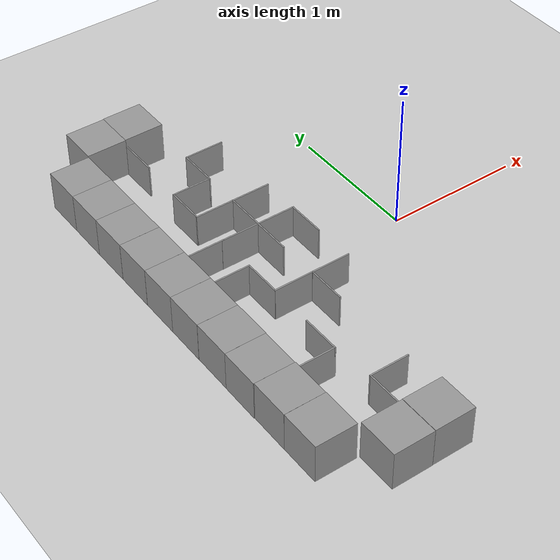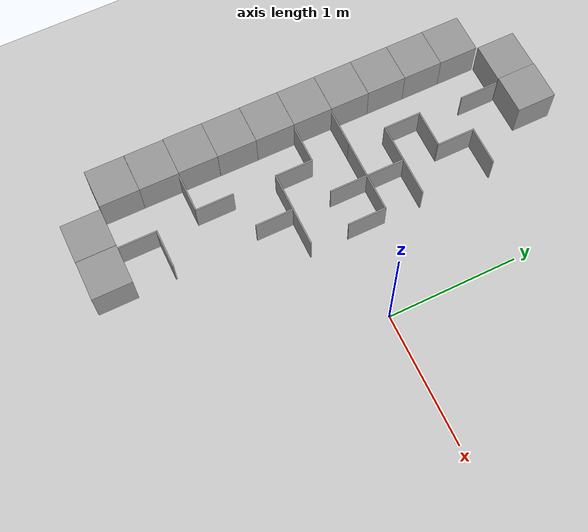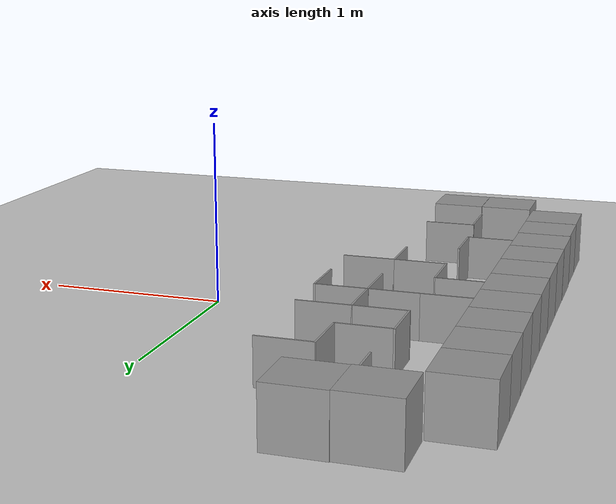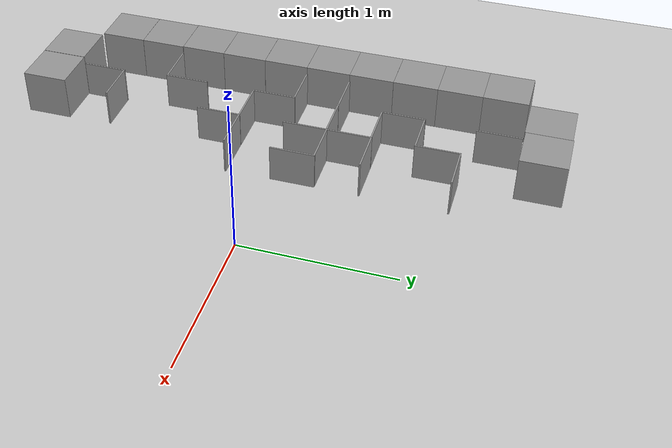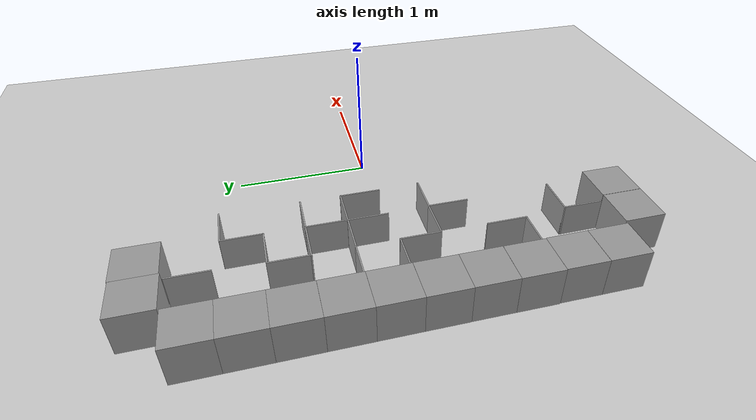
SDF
<sdf version="1.6">
 <world name="default">
  <model name="ground_plane">
   <static>1</static>
   <link name="link">
    <collision name="collision">
     <geometry><plane><normal>0 0 1</normal><size>100 100</size></plane></geometry>
     <surface><friction><ode><mu>100</mu><mu2>50</mu2></ode></friction></surface>
    </collision>
    <visual name="visual">
     <cast_shadows>0</cast_shadows>
     <geometry><plane><normal>0 0 1</normal><size>100 100</size></plane></geometry>
     <material>
      <script><uri>file://media/materials/scripts/gazebo.material</uri><name>Gazebo/Grey</name></script>
     </material>
    </visual>
   </link>
  </model>
  <model name="Box_Yellow">
   <link name="link_0">
    <inertial>
     <mass>1</mass>
     <inertia>
      <ixx>0.166667</ixx>
      <ixy>0</ixy>
      <ixz>0</ixz>
      <iyy>0.166667</iyy>
      <iyz>0</iyz>
      <izz>0.166667</izz>
     </inertia>
    </inertial>
    <visual name="visual">
     <geometry><box><size>0.3 0.3 0.3</size></box></geometry>
     <material>
      <lighting>1</lighting>
      <script><uri>file://media/materials/scripts/gazebo.material</uri><name>Gazebo/Grey</name></script>
      <ambient>1 1 1 1</ambient>
      <diffuse>0.7 0.7 0.7 1</diffuse>
      <specular>0.01 0.01 0.01 1</specular>
      <emissive>0 0 0 1</emissive>
      <shader type="vertex"><normal_map>__default__</normal_map></shader>
     </material>
    </visual>
    <collision name="collision">
     <geometry><box><size>0.3 0.3 0.3</size></box></geometry>
     <surface>
      <friction>
       <ode><mu>1</mu><mu2>1</mu2><fdir1>0 0 0</fdir1><slip1>0</slip1><slip2>0</slip2></ode>
       <torsional>
        <coefficient>1</coefficient>
        <patch_radius>0</patch_radius>
        <surface_radius>0</surface_radius>
        <use_patch_radius>1</use_patch_radius>
        <ode><slip>0</slip></ode>
       </torsional>
      </friction>
      <bounce><restitution_coefficient>0</restitution_coefficient><threshold>1e+06</threshold></bounce>
      <contact>
       <collide_without_contact>0</collide_without_contact>
       <collide_without_contact_bitmask>1</collide_without_contact_bitmask>
       <collide_bitmask>1</collide_bitmask>
       <ode>
        <soft_cfm>0</soft_cfm>
        <soft_erp>0.2</soft_erp>
        <kp>1e+13</kp>
        <kd>1</kd>
        <max_vel>0.01</max_vel>
        <min_depth>0</min_depth>
       </ode>
       <bullet>
        <split_impulse>1</split_impulse>
        <split_impulse_penetration_threshold>-0.01</split_impulse_penetration_threshold>
        <soft_cfm>0</soft_cfm>
        <soft_erp>0.2</soft_erp>
        <kp>1e+13</kp>
        <kd>1</kd>
       </bullet>
      </contact>
     </surface>
    </collision>
   </link>
   <static>0</static>
   <pose>-1.66342 -1.35735 0.15 0 -0 -0.001735</pose>
  </model>
  <model name="Box_Green_clone_6">
   <link name="link_0">
    <inertial>
     <mass>1</mass>
     <inertia>
      <ixx>0.166667</ixx>
      <ixy>0</ixy>
      <ixz>0</ixz>
      <iyy>0.166667</iyy>
      <iyz>0</iyz>
      <izz>0.166667</izz>
     </inertia>
    </inertial>
    <visual name="visual">
     <geometry><box><size>0.3 0.3 0.3</size></box></geometry>
     <material>
      <lighting>1</lighting>
      <script><uri>file://media/materials/scripts/gazebo.material</uri><name>Gazebo/Grey</name></script>
      <ambient>1 1 1 1</ambient>
      <diffuse>0.7 0.7 0.7 1</diffuse>
      <specular>0.01 0.01 0.01 1</specular>
      <emissive>0 0 0 1</emissive>
      <shader type="vertex"><normal_map>__default__</normal_map></shader>
     </material>
    </visual>
    <collision name="collision">
     <geometry><box><size>0.3 0.3 0.3</size></box></geometry>
     <surface>
      <friction>
       <ode><mu>1</mu><mu2>1</mu2><fdir1>0 0 0</fdir1><slip1>0</slip1><slip2>0</slip2></ode>
       <torsional>
        <coefficient>1</coefficient>
        <patch_radius>0</patch_radius>
        <surface_radius>0</surface_radius>
        <use_patch_radius>1</use_patch_radius>
        <ode><slip>0</slip></ode>
       </torsional>
      </friction>
      <bounce><restitution_coefficient>0</restitution_coefficient><threshold>1e+06</threshold></bounce>
      <contact>
       <collide_without_contact>0</collide_without_contact>
       <collide_without_contact_bitmask>1</collide_without_contact_bitmask>
       <collide_bitmask>1</collide_bitmask>
       <ode>
        <soft_cfm>0</soft_cfm>
        <soft_erp>0.2</soft_erp>
        <kp>1e+13</kp>
        <kd>1</kd>
        <max_vel>0.01</max_vel>
        <min_depth>0</min_depth>
       </ode>
       <bullet>
        <split_impulse>1</split_impulse>
        <split_impulse_penetration_threshold>-0.01</split_impulse_penetration_threshold>
        <soft_cfm>0</soft_cfm>
        <soft_erp>0.2</soft_erp>
        <kp>1e+13</kp>
        <kd>1</kd>
       </bullet>
      </contact>
     </surface>
    </collision>
   </link>
   <static>0</static>
   <pose>-1.04062 -1.65808 0.15 0 -0 0.000344</pose>
  </model>
  <model name="Box_Yellow_clone">
   <link name="link_0">
    <inertial>
     <mass>1</mass>
     <inertia>
      <ixx>0.166667</ixx>
      <ixy>0</ixy>
      <ixz>0</ixz>
      <iyy>0.166667</iyy>
      <iyz>0</iyz>
      <izz>0.166667</izz>
     </inertia>
    </inertial>
    <visual name="visual">
     <geometry><box><size>0.3 0.3 0.3</size></box></geometry>
     <material>
      <lighting>1</lighting>
      <script><uri>file://media/materials/scripts/gazebo.material</uri><name>Gazebo/Grey</name></script>
      <ambient>1 1 1 1</ambient>
      <diffuse>0.7 0.7 0.7 1</diffuse>
      <specular>0.01 0.01 0.01 1</specular>
      <emissive>0 0 0 1</emissive>
      <shader type="vertex"><normal_map>__default__</normal_map></shader>
     </material>
    </visual>
    <collision name="collision">
     <geometry><box><size>0.3 0.3 0.3</size></box></geometry>
     <surface>
      <friction>
       <ode><mu>1</mu><mu2>1</mu2><fdir1>0 0 0</fdir1><slip1>0</slip1><slip2>0</slip2></ode>
       <torsional>
        <coefficient>1</coefficient>
        <patch_radius>0</patch_radius>
        <surface_radius>0</surface_radius>
        <use_patch_radius>1</use_patch_radius>
        <ode><slip>0</slip></ode>
       </torsional>
      </friction>
      <bounce><restitution_coefficient>0</restitution_coefficient><threshold>1e+06</threshold></bounce>
      <contact>
       <collide_without_contact>0</collide_without_contact>
       <collide_without_contact_bitmask>1</collide_without_contact_bitmask>
       <collide_bitmask>1</collide_bitmask>
       <ode>
        <soft_cfm>0</soft_cfm>
        <soft_erp>0.2</soft_erp>
        <kp>1e+13</kp>
        <kd>1</kd>
        <max_vel>0.01</max_vel>
        <min_depth>0</min_depth>
       </ode>
       <bullet>
        <split_impulse>1</split_impulse>
        <split_impulse_penetration_threshold>-0.01</split_impulse_penetration_threshold>
        <soft_cfm>0</soft_cfm>
        <soft_erp>0.2</soft_erp>
        <kp>1e+13</kp>
        <kd>1</kd>
       </bullet>
      </contact>
     </surface>
    </collision>
   </link>
   <static>0</static>
   <pose>-1.66313 -1.05692 0.15 -0 -0 -0.004467</pose>
  </model>
  <model name="Box_Yellow_clone_0">
   <link name="link_0">
    <inertial>
     <mass>1</mass>
     <inertia>
      <ixx>0.166667</ixx>
      <ixy>0</ixy>
      <ixz>0</ixz>
      <iyy>0.166667</iyy>
      <iyz>0</iyz>
      <izz>0.166667</izz>
     </inertia>
    </inertial>
    <visual name="visual">
     <geometry><box><size>0.3 0.3 0.3</size></box></geometry>
     <material>
      <lighting>1</lighting>
      <script><uri>file://media/materials/scripts/gazebo.material</uri><name>Gazebo/Grey</name></script>
      <ambient>1 1 1 1</ambient>
      <diffuse>0.7 0.7 0.7 1</diffuse>
      <specular>0.01 0.01 0.01 1</specular>
      <emissive>0 0 0 1</emissive>
      <shader type="vertex"><normal_map>__default__</normal_map></shader>
     </material>
    </visual>
    <collision name="collision">
     <geometry><box><size>0.3 0.3 0.3</size></box></geometry>
     <surface>
      <friction>
       <ode><mu>1</mu><mu2>1</mu2><fdir1>0 0 0</fdir1><slip1>0</slip1><slip2>0</slip2></ode>
       <torsional>
        <coefficient>1</coefficient>
        <patch_radius>0</patch_radius>
        <surface_radius>0</surface_radius>
        <use_patch_radius>1</use_patch_radius>
        <ode><slip>0</slip></ode>
       </torsional>
      </friction>
      <bounce><restitution_coefficient>0</restitution_coefficient><threshold>1e+06</threshold></bounce>
      <contact>
       <collide_without_contact>0</collide_without_contact>
       <collide_without_contact_bitmask>1</collide_without_contact_bitmask>
       <collide_bitmask>1</collide_bitmask>
       <ode>
        <soft_cfm>0</soft_cfm>
        <soft_erp>0.2</soft_erp>
        <kp>1e+13</kp>
        <kd>1</kd>
        <max_vel>0.01</max_vel>
        <min_depth>0</min_depth>
       </ode>
       <bullet>
        <split_impulse>1</split_impulse>
        <split_impulse_penetration_threshold>-0.01</split_impulse_penetration_threshold>
        <soft_cfm>0</soft_cfm>
        <soft_erp>0.2</soft_erp>
        <kp>1e+13</kp>
        <kd>1</kd>
       </bullet>
      </contact>
     </surface>
    </collision>
   </link>
   <static>0</static>
   <pose>-1.66556 -0.756786 0.149998 -7e-06 4e-06 -0.005224</pose>
  </model>
  <model name="Box_Yellow_clone_1">
   <link name="link_0">
    <inertial>
     <mass>1</mass>
     <inertia>
      <ixx>0.166667</ixx>
      <ixy>0</ixy>
      <ixz>0</ixz>
      <iyy>0.166667</iyy>
      <iyz>0</iyz>
      <izz>0.166667</izz>
     </inertia>
    </inertial>
    <visual name="visual">
     <geometry><box><size>0.3 0.3 0.3</size></box></geometry>
     <material>
      <lighting>1</lighting>
      <script><uri>file://media/materials/scripts/gazebo.material</uri><name>Gazebo/Grey</name></script>
      <ambient>1 1 1 1</ambient>
      <diffuse>0.7 0.7 0.7 1</diffuse>
      <specular>0.01 0.01 0.01 1</specular>
      <emissive>0 0 0 1</emissive>
      <shader type="vertex"><normal_map>__default__</normal_map></shader>
     </material>
    </visual>
    <collision name="collision">
     <geometry><box><size>0.3 0.3 0.3</size></box></geometry>
     <surface>
      <friction>
       <ode><mu>1</mu><mu2>1</mu2><fdir1>0 0 0</fdir1><slip1>0</slip1><slip2>0</slip2></ode>
       <torsional>
        <coefficient>1</coefficient>
        <patch_radius>0</patch_radius>
        <surface_radius>0</surface_radius>
        <use_patch_radius>1</use_patch_radius>
        <ode><slip>0</slip></ode>
       </torsional>
      </friction>
      <bounce><restitution_coefficient>0</restitution_coefficient><threshold>1e+06</threshold></bounce>
      <contact>
       <collide_without_contact>0</collide_without_contact>
       <collide_without_contact_bitmask>1</collide_without_contact_bitmask>
       <collide_bitmask>1</collide_bitmask>
       <ode>
        <soft_cfm>0</soft_cfm>
        <soft_erp>0.2</soft_erp>
        <kp>1e+13</kp>
        <kd>1</kd>
        <max_vel>0.01</max_vel>
        <min_depth>0</min_depth>
       </ode>
       <bullet>
        <split_impulse>1</split_impulse>
        <split_impulse_penetration_threshold>-0.01</split_impulse_penetration_threshold>
        <soft_cfm>0</soft_cfm>
        <soft_erp>0.2</soft_erp>
        <kp>1e+13</kp>
        <kd>1</kd>
       </bullet>
      </contact>
     </surface>
    </collision>
   </link>
   <static>0</static>
   <pose>-1.66357 -0.456556 0.15 0 -0 -0.00366</pose>
  </model>
  <model name="Box_Yellow_clone_2">
   <link name="link_0">
    <inertial>
     <mass>1</mass>
     <inertia>
      <ixx>0.166667</ixx>
      <ixy>0</ixy>
      <ixz>0</ixz>
      <iyy>0.166667</iyy>
      <iyz>0</iyz>
      <izz>0.166667</izz>
     </inertia>
    </inertial>
    <visual name="visual">
     <geometry><box><size>0.3 0.3 0.3</size></box></geometry>
     <material>
      <lighting>1</lighting>
      <script><uri>file://media/materials/scripts/gazebo.material</uri><name>Gazebo/Grey</name></script>
      <ambient>1 1 1 1</ambient>
      <diffuse>0.7 0.7 0.7 1</diffuse>
      <specular>0.01 0.01 0.01 1</specular>
      <emissive>0 0 0 1</emissive>
      <shader type="vertex"><normal_map>__default__</normal_map></shader>
     </material>
    </visual>
    <collision name="collision">
     <geometry><box><size>0.3 0.3 0.3</size></box></geometry>
     <surface>
      <friction>
       <ode><mu>1</mu><mu2>1</mu2><fdir1>0 0 0</fdir1><slip1>0</slip1><slip2>0</slip2></ode>
       <torsional>
        <coefficient>1</coefficient>
        <patch_radius>0</patch_radius>
        <surface_radius>0</surface_radius>
        <use_patch_radius>1</use_patch_radius>
        <ode><slip>0</slip></ode>
       </torsional>
      </friction>
      <bounce><restitution_coefficient>0</restitution_coefficient><threshold>1e+06</threshold></bounce>
      <contact>
       <collide_without_contact>0</collide_without_contact>
       <collide_without_contact_bitmask>1</collide_without_contact_bitmask>
       <collide_bitmask>1</collide_bitmask>
       <ode>
        <soft_cfm>0</soft_cfm>
        <soft_erp>0.2</soft_erp>
        <kp>1e+13</kp>
        <kd>1</kd>
        <max_vel>0.01</max_vel>
        <min_depth>0</min_depth>
       </ode>
       <bullet>
        <split_impulse>1</split_impulse>
        <split_impulse_penetration_threshold>-0.01</split_impulse_penetration_threshold>
        <soft_cfm>0</soft_cfm>
        <soft_erp>0.2</soft_erp>
        <kp>1e+13</kp>
        <kd>1</kd>
       </bullet>
      </contact>
     </surface>
    </collision>
   </link>
   <static>0</static>
   <pose>-1.66351 -0.156356 0.15 0 0 -0.002346</pose>
  </model>
  <model name="Box_Yellow_clone_3">
   <link name="link_0">
    <inertial>
     <mass>1</mass>
     <inertia>
      <ixx>0.166667</ixx>
      <ixy>0</ixy>
      <ixz>0</ixz>
      <iyy>0.166667</iyy>
      <iyz>0</iyz>
      <izz>0.166667</izz>
     </inertia>
    </inertial>
    <visual name="visual">
     <geometry><box><size>0.3 0.3 0.3</size></box></geometry>
     <material>
      <lighting>1</lighting>
      <script><uri>file://media/materials/scripts/gazebo.material</uri><name>Gazebo/Grey</name></script>
      <ambient>1 1 1 1</ambient>
      <diffuse>0.7 0.7 0.7 1</diffuse>
      <specular>0.01 0.01 0.01 1</specular>
      <emissive>0 0 0 1</emissive>
      <shader type="vertex"><normal_map>__default__</normal_map></shader>
     </material>
    </visual>
    <collision name="collision">
     <geometry><box><size>0.3 0.3 0.3</size></box></geometry>
     <surface>
      <friction>
       <ode><mu>1</mu><mu2>1</mu2><fdir1>0 0 0</fdir1><slip1>0</slip1><slip2>0</slip2></ode>
       <torsional>
        <coefficient>1</coefficient>
        <patch_radius>0</patch_radius>
        <surface_radius>0</surface_radius>
        <use_patch_radius>1</use_patch_radius>
        <ode><slip>0</slip></ode>
       </torsional>
      </friction>
      <bounce><restitution_coefficient>0</restitution_coefficient><threshold>1e+06</threshold></bounce>
      <contact>
       <collide_without_contact>0</collide_without_contact>
       <collide_without_contact_bitmask>1</collide_without_contact_bitmask>
       <collide_bitmask>1</collide_bitmask>
       <ode>
        <soft_cfm>0</soft_cfm>
        <soft_erp>0.2</soft_erp>
        <kp>1e+13</kp>
        <kd>1</kd>
        <max_vel>0.01</max_vel>
        <min_depth>0</min_depth>
       </ode>
       <bullet>
        <split_impulse>1</split_impulse>
        <split_impulse_penetration_threshold>-0.01</split_impulse_penetration_threshold>
        <soft_cfm>0</soft_cfm>
        <soft_erp>0.2</soft_erp>
        <kp>1e+13</kp>
        <kd>1</kd>
       </bullet>
      </contact>
     </surface>
    </collision>
   </link>
   <static>0</static>
   <pose>-1.66285 0.143717 0.15 -0 -0 -0.00186</pose>
  </model>
  <model name="Box_Yellow_clone_4">
   <link name="link_0">
    <inertial>
     <mass>1</mass>
     <inertia>
      <ixx>0.166667</ixx>
      <ixy>0</ixy>
      <ixz>0</ixz>
      <iyy>0.166667</iyy>
      <iyz>0</iyz>
      <izz>0.166667</izz>
     </inertia>
    </inertial>
    <visual name="visual">
     <geometry><box><size>0.3 0.3 0.3</size></box></geometry>
     <material>
      <lighting>1</lighting>
      <script><uri>file://media/materials/scripts/gazebo.material</uri><name>Gazebo/Grey</name></script>
      <ambient>1 1 1 1</ambient>
      <diffuse>0.7 0.7 0.7 1</diffuse>
      <specular>0.01 0.01 0.01 1</specular>
      <emissive>0 0 0 1</emissive>
      <shader type="vertex"><normal_map>__default__</normal_map></shader>
     </material>
    </visual>
    <collision name="collision">
     <geometry><box><size>0.3 0.3 0.3</size></box></geometry>
     <surface>
      <friction>
       <ode><mu>1</mu><mu2>1</mu2><fdir1>0 0 0</fdir1><slip1>0</slip1><slip2>0</slip2></ode>
       <torsional>
        <coefficient>1</coefficient>
        <patch_radius>0</patch_radius>
        <surface_radius>0</surface_radius>
        <use_patch_radius>1</use_patch_radius>
        <ode><slip>0</slip></ode>
       </torsional>
      </friction>
      <bounce><restitution_coefficient>0</restitution_coefficient><threshold>1e+06</threshold></bounce>
      <contact>
       <collide_without_contact>0</collide_without_contact>
       <collide_without_contact_bitmask>1</collide_without_contact_bitmask>
       <collide_bitmask>1</collide_bitmask>
       <ode>
        <soft_cfm>0</soft_cfm>
        <soft_erp>0.2</soft_erp>
        <kp>1e+13</kp>
        <kd>1</kd>
        <max_vel>0.01</max_vel>
        <min_depth>0</min_depth>
       </ode>
       <bullet>
        <split_impulse>1</split_impulse>
        <split_impulse_penetration_threshold>-0.01</split_impulse_penetration_threshold>
        <soft_cfm>0</soft_cfm>
        <soft_erp>0.2</soft_erp>
        <kp>1e+13</kp>
        <kd>1</kd>
       </bullet>
      </contact>
     </surface>
    </collision>
   </link>
   <static>0</static>
   <pose>-1.66278 0.443767 0.15 -0 -0 -0.001536</pose>
  </model>
  <model name="Box_Yellow_clone_5">
   <link name="link_0">
    <inertial>
     <mass>1</mass>
     <inertia>
      <ixx>0.166667</ixx>
      <ixy>0</ixy>
      <ixz>0</ixz>
      <iyy>0.166667</iyy>
      <iyz>0</iyz>
      <izz>0.166667</izz>
     </inertia>
    </inertial>
    <visual name="visual">
     <geometry><box><size>0.3 0.3 0.3</size></box></geometry>
     <material>
      <lighting>1</lighting>
      <script><uri>file://media/materials/scripts/gazebo.material</uri><name>Gazebo/Grey</name></script>
      <ambient>1 1 1 1</ambient>
      <diffuse>0.7 0.7 0.7 1</diffuse>
      <specular>0.01 0.01 0.01 1</specular>
      <emissive>0 0 0 1</emissive>
      <shader type="vertex"><normal_map>__default__</normal_map></shader>
     </material>
    </visual>
    <collision name="collision">
     <geometry><box><size>0.3 0.3 0.3</size></box></geometry>
     <surface>
      <friction>
       <ode><mu>1</mu><mu2>1</mu2><fdir1>0 0 0</fdir1><slip1>0</slip1><slip2>0</slip2></ode>
       <torsional>
        <coefficient>1</coefficient>
        <patch_radius>0</patch_radius>
        <surface_radius>0</surface_radius>
        <use_patch_radius>1</use_patch_radius>
        <ode><slip>0</slip></ode>
       </torsional>
      </friction>
      <bounce><restitution_coefficient>0</restitution_coefficient><threshold>1e+06</threshold></bounce>
      <contact>
       <collide_without_contact>0</collide_without_contact>
       <collide_without_contact_bitmask>1</collide_without_contact_bitmask>
       <collide_bitmask>1</collide_bitmask>
       <ode>
        <soft_cfm>0</soft_cfm>
        <soft_erp>0.2</soft_erp>
        <kp>1e+13</kp>
        <kd>1</kd>
        <max_vel>0.01</max_vel>
        <min_depth>0</min_depth>
       </ode>
       <bullet>
        <split_impulse>1</split_impulse>
        <split_impulse_penetration_threshold>-0.01</split_impulse_penetration_threshold>
        <soft_cfm>0</soft_cfm>
        <soft_erp>0.2</soft_erp>
        <kp>1e+13</kp>
        <kd>1</kd>
       </bullet>
      </contact>
     </surface>
    </collision>
   </link>
   <static>0</static>
   <pose>-1.66285 0.743858 0.15 -0 -0 -0.000942</pose>
  </model>
  <model name="Box_Yellow_clone_6">
   <link name="link_0">
    <inertial>
     <mass>1</mass>
     <inertia>
      <ixx>0.166667</ixx>
      <ixy>0</ixy>
      <ixz>0</ixz>
      <iyy>0.166667</iyy>
      <iyz>0</iyz>
      <izz>0.166667</izz>
     </inertia>
    </inertial>
    <visual name="visual">
     <geometry><box><size>0.3 0.3 0.3</size></box></geometry>
     <material>
      <lighting>1</lighting>
      <script><uri>file://media/materials/scripts/gazebo.material</uri><name>Gazebo/Grey</name></script>
      <ambient>1 1 1 1</ambient>
      <diffuse>0.7 0.7 0.7 1</diffuse>
      <specular>0.01 0.01 0.01 1</specular>
      <emissive>0 0 0 1</emissive>
      <shader type="vertex"><normal_map>__default__</normal_map></shader>
     </material>
    </visual>
    <collision name="collision">
     <geometry><box><size>0.3 0.3 0.3</size></box></geometry>
     <surface>
      <friction>
       <ode><mu>1</mu><mu2>1</mu2><fdir1>0 0 0</fdir1><slip1>0</slip1><slip2>0</slip2></ode>
       <torsional>
        <coefficient>1</coefficient>
        <patch_radius>0</patch_radius>
        <surface_radius>0</surface_radius>
        <use_patch_radius>1</use_patch_radius>
        <ode><slip>0</slip></ode>
       </torsional>
      </friction>
      <bounce><restitution_coefficient>0</restitution_coefficient><threshold>1e+06</threshold></bounce>
      <contact>
       <collide_without_contact>0</collide_without_contact>
       <collide_without_contact_bitmask>1</collide_without_contact_bitmask>
       <collide_bitmask>1</collide_bitmask>
       <ode>
        <soft_cfm>0</soft_cfm>
        <soft_erp>0.2</soft_erp>
        <kp>1e+13</kp>
        <kd>1</kd>
        <max_vel>0.01</max_vel>
        <min_depth>0</min_depth>
       </ode>
       <bullet>
        <split_impulse>1</split_impulse>
        <split_impulse_penetration_threshold>-0.01</split_impulse_penetration_threshold>
        <soft_cfm>0</soft_cfm>
        <soft_erp>0.2</soft_erp>
        <kp>1e+13</kp>
        <kd>1</kd>
       </bullet>
      </contact>
     </surface>
    </collision>
   </link>
   <static>0</static>
   <pose>-1.66268 1.04386 0.15 0 -0 -0.00094</pose>
  </model>
  <model name="Box_Yellow_clone_7">
   <link name="link_0">
    <inertial>
     <mass>1</mass>
     <inertia>
      <ixx>0.166667</ixx>
      <ixy>0</ixy>
      <ixz>0</ixz>
      <iyy>0.166667</iyy>
      <iyz>0</iyz>
      <izz>0.166667</izz>
     </inertia>
    </inertial>
    <visual name="visual">
     <geometry><box><size>0.3 0.3 0.3</size></box></geometry>
     <material>
      <lighting>1</lighting>
      <script><uri>file://media/materials/scripts/gazebo.material</uri><name>Gazebo/Grey</name></script>
      <ambient>1 1 1 1</ambient>
      <diffuse>0.7 0.7 0.7 1</diffuse>
      <specular>0.01 0.01 0.01 1</specular>
      <emissive>0 0 0 1</emissive>
      <shader type="vertex"><normal_map>__default__</normal_map></shader>
     </material>
    </visual>
    <collision name="collision">
     <geometry><box><size>0.3 0.3 0.3</size></box></geometry>
     <surface>
      <friction>
       <ode><mu>1</mu><mu2>1</mu2><fdir1>0 0 0</fdir1><slip1>0</slip1><slip2>0</slip2></ode>
       <torsional>
        <coefficient>1</coefficient>
        <patch_radius>0</patch_radius>
        <surface_radius>0</surface_radius>
        <use_patch_radius>1</use_patch_radius>
        <ode><slip>0</slip></ode>
       </torsional>
      </friction>
      <bounce><restitution_coefficient>0</restitution_coefficient><threshold>1e+06</threshold></bounce>
      <contact>
       <collide_without_contact>0</collide_without_contact>
       <collide_without_contact_bitmask>1</collide_without_contact_bitmask>
       <collide_bitmask>1</collide_bitmask>
       <ode>
        <soft_cfm>0</soft_cfm>
        <soft_erp>0.2</soft_erp>
        <kp>1e+13</kp>
        <kd>1</kd>
        <max_vel>0.01</max_vel>
        <min_depth>0</min_depth>
       </ode>
       <bullet>
        <split_impulse>1</split_impulse>
        <split_impulse_penetration_threshold>-0.01</split_impulse_penetration_threshold>
        <soft_cfm>0</soft_cfm>
        <soft_erp>0.2</soft_erp>
        <kp>1e+13</kp>
        <kd>1</kd>
       </bullet>
      </contact>
     </surface>
    </collision>
   </link>
   <static>0</static>
   <pose>-1.66254 1.34386 0.149998 7e-06 -4e-06 -0.000937</pose>
  </model>
  <model name="Box_Blue_clone_6">
   <link name="link_0">
    <inertial>
     <mass>1</mass>
     <inertia>
      <ixx>0.166667</ixx>
      <ixy>0</ixy>
      <ixz>0</ixz>
      <iyy>0.166667</iyy>
      <iyz>0</iyz>
      <izz>0.166667</izz>
     </inertia>
    </inertial>
    <visual name="visual">
     <geometry><box><size>0.3 0.3 0.3</size></box></geometry>
     <material>
      <lighting>1</lighting>
      <script><uri>file://media/materials/scripts/gazebo.material</uri><name>Gazebo/Grey</name></script>
      <ambient>1 1 1 1</ambient>
      <diffuse>0.7 0.7 0.7 1</diffuse>
      <specular>0.01 0.01 0.01 1</specular>
      <emissive>0 0 0 1</emissive>
      <shader type="vertex"><normal_map>__default__</normal_map></shader>
     </material>
    </visual>
    <collision name="collision">
     <geometry><box><size>0.3 0.3 0.3</size></box></geometry>
     <surface>
      <friction>
       <ode><mu>1</mu><mu2>1</mu2><fdir1>0 0 0</fdir1><slip1>0</slip1><slip2>0</slip2></ode>
       <torsional>
        <coefficient>1</coefficient>
        <patch_radius>0</patch_radius>
        <surface_radius>0</surface_radius>
        <use_patch_radius>1</use_patch_radius>
        <ode><slip>0</slip></ode>
       </torsional>
      </friction>
      <bounce><restitution_coefficient>0</restitution_coefficient><threshold>1e+06</threshold></bounce>
      <contact>
       <collide_without_contact>0</collide_without_contact>
       <collide_without_contact_bitmask>1</collide_without_contact_bitmask>
       <collide_bitmask>1</collide_bitmask>
       <ode>
        <soft_cfm>0</soft_cfm>
        <soft_erp>0.2</soft_erp>
        <kp>1e+13</kp>
        <kd>1</kd>
        <max_vel>0.01</max_vel>
        <min_depth>0</min_depth>
       </ode>
       <bullet>
        <split_impulse>1</split_impulse>
        <split_impulse_penetration_threshold>-0.01</split_impulse_penetration_threshold>
        <soft_cfm>0</soft_cfm>
        <soft_erp>0.2</soft_erp>
        <kp>1e+13</kp>
        <kd>1</kd>
       </bullet>
      </contact>
     </surface>
    </collision>
   </link>
   <static>0</static>
   <pose>-1.05978 1.66049 0.15 0 -0 0.001403</pose>
  </model>
  <model name="Box_Blue_clone_7">
   <link name="link_0">
    <inertial>
     <mass>1</mass>
     <inertia>
      <ixx>0.166667</ixx>
      <ixy>0</ixy>
      <ixz>0</ixz>
      <iyy>0.166667</iyy>
      <iyz>0</iyz>
      <izz>0.166667</izz>
     </inertia>
    </inertial>
    <visual name="visual">
     <geometry><box><size>0.3 0.3 0.3</size></box></geometry>
     <material>
      <lighting>1</lighting>
      <script><uri>file://media/materials/scripts/gazebo.material</uri><name>Gazebo/Grey</name></script>
      <ambient>1 1 1 1</ambient>
      <diffuse>0.7 0.7 0.7 1</diffuse>
      <specular>0.01 0.01 0.01 1</specular>
      <emissive>0 0 0 1</emissive>
      <shader type="vertex"><normal_map>__default__</normal_map></shader>
     </material>
    </visual>
    <collision name="collision">
     <geometry><box><size>0.3 0.3 0.3</size></box></geometry>
     <surface>
      <friction>
       <ode><mu>1</mu><mu2>1</mu2><fdir1>0 0 0</fdir1><slip1>0</slip1><slip2>0</slip2></ode>
       <torsional>
        <coefficient>1</coefficient>
        <patch_radius>0</patch_radius>
        <surface_radius>0</surface_radius>
        <use_patch_radius>1</use_patch_radius>
        <ode><slip>0</slip></ode>
       </torsional>
      </friction>
      <bounce><restitution_coefficient>0</restitution_coefficient><threshold>1e+06</threshold></bounce>
      <contact>
       <collide_without_contact>0</collide_without_contact>
       <collide_without_contact_bitmask>1</collide_without_contact_bitmask>
       <collide_bitmask>1</collide_bitmask>
       <ode>
        <soft_cfm>0</soft_cfm>
        <soft_erp>0.2</soft_erp>
        <kp>1e+13</kp>
        <kd>1</kd>
        <max_vel>0.01</max_vel>
        <min_depth>0</min_depth>
       </ode>
       <bullet>
        <split_impulse>1</split_impulse>
        <split_impulse_penetration_threshold>-0.01</split_impulse_penetration_threshold>
        <soft_cfm>0</soft_cfm>
        <soft_erp>0.2</soft_erp>
        <kp>1e+13</kp>
        <kd>1</kd>
       </bullet>
      </contact>
     </surface>
    </collision>
   </link>
   <static>0</static>
   <pose>-1.3598 1.65522 0.15 0 -0 0.001322</pose>
  </model>
  <model name="Box_Green_clone_7">
   <link name="link_0">
    <inertial>
     <mass>1</mass>
     <inertia>
      <ixx>0.166667</ixx>
      <ixy>0</ixy>
      <ixz>0</ixz>
      <iyy>0.166667</iyy>
      <iyz>0</iyz>
      <izz>0.166667</izz>
     </inertia>
    </inertial>
    <visual name="visual">
     <geometry><box><size>0.3 0.3 0.3</size></box></geometry>
     <material>
      <lighting>1</lighting>
      <script><uri>file://media/materials/scripts/gazebo.material</uri><name>Gazebo/Grey</name></script>
      <ambient>1 1 1 1</ambient>
      <diffuse>0.7 0.7 0.7 1</diffuse>
      <specular>0.01 0.01 0.01 1</specular>
      <emissive>0 0 0 1</emissive>
      <shader type="vertex"><normal_map>__default__</normal_map></shader>
     </material>
    </visual>
    <collision name="collision">
     <geometry><box><size>0.3 0.3 0.3</size></box></geometry>
     <surface>
      <friction>
       <ode><mu>1</mu><mu2>1</mu2><fdir1>0 0 0</fdir1><slip1>0</slip1><slip2>0</slip2></ode>
       <torsional>
        <coefficient>1</coefficient>
        <patch_radius>0</patch_radius>
        <surface_radius>0</surface_radius>
        <use_patch_radius>1</use_patch_radius>
        <ode><slip>0</slip></ode>
       </torsional>
      </friction>
      <bounce><restitution_coefficient>0</restitution_coefficient><threshold>1e+06</threshold></bounce>
      <contact>
       <collide_without_contact>0</collide_without_contact>
       <collide_without_contact_bitmask>1</collide_without_contact_bitmask>
       <collide_bitmask>1</collide_bitmask>
       <ode>
        <soft_cfm>0</soft_cfm>
        <soft_erp>0.2</soft_erp>
        <kp>1e+13</kp>
        <kd>1</kd>
        <max_vel>0.01</max_vel>
        <min_depth>0</min_depth>
       </ode>
       <bullet>
        <split_impulse>1</split_impulse>
        <split_impulse_penetration_threshold>-0.01</split_impulse_penetration_threshold>
        <soft_cfm>0</soft_cfm>
        <soft_erp>0.2</soft_erp>
        <kp>1e+13</kp>
        <kd>1</kd>
       </bullet>
      </contact>
     </surface>
    </collision>
   </link>
   <static>0</static>
   <pose>-1.34247 -1.65973 0.15 0 -0 -0.000195</pose>
  </model>
  <model name="Maze_L_RU">
   <pose>-1.36417 -0.767498 0 0 -0 0</pose>
   <link name="Wall_11">
    <collision name="Wall_11_Collision">
     <geometry><box><size>0.294 0.01 0.25</size></box></geometry>
     <pose>0 0 0.125 0 -0 0</pose>
    </collision>
    <visual name="Wall_11_Visual">
     <pose>0 0 0.125 0 -0 0</pose>
     <geometry><box><size>0.294 0.01 0.25</size></box></geometry>
     <material>
      <script><uri>file://media/materials/scripts/gazebo.material</uri><name>Gazebo/Grey</name></script>
      <ambient>1 1 1 1</ambient>
     </material>
     <meta><layer>0</layer></meta>
    </visual>
    <pose>0 -0.142 0 0 -0 0</pose>
   </link>
   <link name="Wall_12">
    <collision name="Wall_12_Collision">
     <geometry><box><size>0.294 0.01 0.25</size></box></geometry>
     <pose>0 0 0.125 0 -0 0</pose>
    </collision>
    <visual name="Wall_12_Visual">
     <pose>0 0 0.125 0 -0 0</pose>
     <geometry><box><size>0.294 0.01 0.25</size></box></geometry>
     <material>
      <script><uri>file://media/materials/scripts/gazebo.material</uri><name>Gazebo/Grey</name></script>
      <ambient>1 1 1 1</ambient>
     </material>
     <meta><layer>0</layer></meta>
    </visual>
    <pose>0.142 0 0 0 -0 1.5708</pose>
   </link>
   <static>1</static>
  </model>
  <model name="Maze_I_V">
   <pose>-1.35964 0.293545 0 0 -0 0</pose>
   <link name="Wall_0">
    <collision name="Wall_0_Collision">
     <geometry><box><size>0.294 0.01 0.25</size></box></geometry>
     <pose>0 0 0.125 0 -0 0</pose>
    </collision>
    <visual name="Wall_0_Visual">
     <pose>0 0 0.125 0 -0 0</pose>
     <geometry><box><size>0.294 0.01 0.25</size></box></geometry>
     <material>
      <script><uri>file://media/materials/scripts/gazebo.material</uri><name>Gazebo/Grey</name></script>
      <ambient>1 1 1 1</ambient>
     </material>
     <meta><layer>0</layer></meta>
    </visual>
   </link>
   <static>1</static>
  </model>
  <model name="Maze_L_LB">
   <pose>-0.798102 0.44384 0 0 -0 0</pose>
   <link name="Wall_0">
    <collision name="Wall_0_Collision">
     <geometry><box><size>0.294 0.01 0.25</size></box></geometry>
     <pose>0 0 0.125 0 -0 0</pose>
    </collision>
    <visual name="Wall_0_Visual">
     <pose>0 0 0.125 0 -0 0</pose>
     <geometry><box><size>0.294 0.01 0.25</size></box></geometry>
     <material>
      <script><uri>file://media/materials/scripts/gazebo.material</uri><name>Gazebo/Grey</name></script>
      <ambient>1 1 1 1</ambient>
     </material>
     <meta><layer>0</layer></meta>
    </visual>
    <pose>0 0.142 0 0 -0 0</pose>
   </link>
   <link name="Wall_2">
    <collision name="Wall_2_Collision">
     <geometry><box><size>0.294 0.01 0.25</size></box></geometry>
     <pose>0 0 0.125 0 -0 0</pose>
    </collision>
    <visual name="Wall_2_Visual">
     <pose>0 0 0.125 0 -0 0</pose>
     <geometry><box><size>0.294 0.01 0.25</size></box></geometry>
     <material>
      <script><uri>file://media/materials/scripts/gazebo.material</uri><name>Gazebo/Grey</name></script>
      <ambient>1 1 1 1</ambient>
     </material>
     <meta><layer>0</layer></meta>
    </visual>
    <pose>-0.142 0 0 0 0 -1.5708</pose>
   </link>
   <static>1</static>
  </model>
  <model name="Maze_L_LU">
   <pose>-1.36321 -0.14843 0 0 -0 0</pose>
   <link name="Wall_0">
    <collision name="Wall_0_Collision">
     <geometry><box><size>0.294 0.01 0.25</size></box></geometry>
     <pose>0 0 0.125 0 -0 0</pose>
    </collision>
    <visual name="Wall_0_Visual">
     <pose>0 0 0.125 0 -0 0</pose>
     <geometry><box><size>0.294 0.01 0.25</size></box></geometry>
     <material>
      <script><uri>file://media/materials/scripts/gazebo.material</uri><name>Gazebo/Grey</name></script>
      <ambient>1 1 1 1</ambient>
     </material>
     <meta><layer>0</layer></meta>
    </visual>
    <pose>0 0.142 0 0 -0 3.14159</pose>
   </link>
   <link name="Wall_2">
    <collision name="Wall_2_Collision">
     <geometry><box><size>0.294 0.01 0.25</size></box></geometry>
     <pose>0 0 0.125 0 -0 0</pose>
    </collision>
    <visual name="Wall_2_Visual">
     <pose>0 0 0.125 0 -0 0</pose>
     <geometry><box><size>0.294 0.01 0.25</size></box></geometry>
     <material>
      <script><uri>file://media/materials/scripts/gazebo.material</uri><name>Gazebo/Grey</name></script>
      <ambient>1 1 1 1</ambient>
     </material>
     <meta><layer>0</layer></meta>
    </visual>
    <pose>0.142 0 0 0 0 -1.5708</pose>
   </link>
   <static>1</static>
  </model>
  <model name="Maze_L_RB">
   <pose>-1.08633 0.727561 0 0 -0 0</pose>
   <link name="Wall_0">
    <collision name="Wall_0_Collision">
     <geometry><box><size>0.294 0.01 0.25</size></box></geometry>
     <pose>0 0 0.125 0 -0 0</pose>
    </collision>
    <visual name="Wall_0_Visual">
     <pose>0 0 0.125 0 -0 0</pose>
     <geometry><box><size>0.294 0.01 0.25</size></box></geometry>
     <material>
      <script><uri>file://media/materials/scripts/gazebo.material</uri><name>Gazebo/Grey</name></script>
      <ambient>1 1 1 1</ambient>
     </material>
     <meta><layer>0</layer></meta>
    </visual>
    <pose>0 -0.142 0 0 -0 0</pose>
   </link>
   <link name="Wall_2">
    <collision name="Wall_2_Collision">
     <geometry><box><size>0.294 0.01 0.25</size></box></geometry>
     <pose>0 0 0.125 0 -0 0</pose>
    </collision>
    <visual name="Wall_2_Visual">
     <pose>0 0 0.125 0 -0 0</pose>
     <geometry><box><size>0.294 0.01 0.25</size></box></geometry>
     <material>
      <script><uri>file://media/materials/scripts/gazebo.material</uri><name>Gazebo/Grey</name></script>
      <ambient>1 1 1 1</ambient>
     </material>
     <meta><layer>0</layer></meta>
    </visual>
    <pose>-0.142 0 0 0 -0 1.5708</pose>
   </link>
   <static>1</static>
  </model>
  <model name="Maze_I_H_clone_6">
   <pose>-1.20777 1.35352 0 0 -0 0</pose>
   <link name="Wall_0">
    <collision name="Wall_0_Collision">
     <geometry><box><size>0.294 0.01 0.25</size></box></geometry>
     <pose>0 0 0.125 0 -0 0</pose>
    </collision>
    <visual name="Wall_0_Visual">
     <pose>0 0 0.125 0 -0 0</pose>
     <geometry><box><size>0.294 0.01 0.25</size></box></geometry>
     <material>
      <script><uri>file://media/materials/scripts/gazebo.material</uri><name>Gazebo/Grey</name></script>
      <ambient>1 1 1 1</ambient>
     </material>
     <meta><layer>0</layer></meta>
    </visual>
    <pose>0 0 0 0 -0 1.5708</pose>
   </link>
   <static>1</static>
  </model>
  <model name="Maze_L_LB_clone_4">
   <pose>-1.04983 -1.35853 0 0 -0 0</pose>
   <link name="Wall_0">
    <collision name="Wall_0_Collision">
     <geometry><box><size>0.294 0.01 0.25</size></box></geometry>
     <pose>0 0 0.125 0 -0 0</pose>
    </collision>
    <visual name="Wall_0_Visual">
     <pose>0 0 0.125 0 -0 0</pose>
     <geometry><box><size>0.294 0.01 0.25</size></box></geometry>
     <material>
      <script><uri>file://media/materials/scripts/gazebo.material</uri><name>Gazebo/Grey</name></script>
      <ambient>1 1 1 1</ambient>
     </material>
     <meta><layer>0</layer></meta>
    </visual>
    <pose>0 0.142 0 0 -0 0</pose>
   </link>
   <link name="Wall_2">
    <collision name="Wall_2_Collision">
     <geometry><box><size>0.294 0.01 0.25</size></box></geometry>
     <pose>0 0 0.125 0 -0 0</pose>
    </collision>
    <visual name="Wall_2_Visual">
     <pose>0 0 0.125 0 -0 0</pose>
     <geometry><box><size>0.294 0.01 0.25</size></box></geometry>
     <material>
      <script><uri>file://media/materials/scripts/gazebo.material</uri><name>Gazebo/Grey</name></script>
      <ambient>1 1 1 1</ambient>
     </material>
     <meta><layer>0</layer></meta>
    </visual>
    <pose>-0.142 0 0 0 0 -1.5708</pose>
   </link>
   <static>1</static>
  </model>
  <model name="Maze_L_LB_clone_5_clone">
   <pose>-0.788521 -0.434448 0 0 -0 0</pose>
   <link name="Wall_0">
    <collision name="Wall_0_Collision">
     <geometry><box><size>0.294 0.01 0.25</size></box></geometry>
     <pose>0 0 0.125 0 -0 0</pose>
    </collision>
    <visual name="Wall_0_Visual">
     <pose>0 0 0.125 0 -0 0</pose>
     <geometry><box><size>0.294 0.01 0.25</size></box></geometry>
     <material>
      <script><uri>file://media/materials/scripts/gazebo.material</uri><name>Gazebo/Grey</name></script>
      <ambient>1 1 1 1</ambient>
     </material>
     <meta><layer>0</layer></meta>
    </visual>
    <pose>0 0.142 0 0 -0 0</pose>
   </link>
   <link name="Wall_2">
    <collision name="Wall_2_Collision">
     <geometry><box><size>0.294 0.01 0.25</size></box></geometry>
     <pose>0 0 0.125 0 -0 0</pose>
    </collision>
    <visual name="Wall_2_Visual">
     <pose>0 0 0.125 0 -0 0</pose>
     <geometry><box><size>0.294 0.01 0.25</size></box></geometry>
     <material>
      <script><uri>file://media/materials/scripts/gazebo.material</uri><name>Gazebo/Grey</name></script>
      <ambient>1 1 1 1</ambient>
     </material>
     <meta><layer>0</layer></meta>
    </visual>
    <pose>-0.142 0 0 0 0 -1.5708</pose>
   </link>
   <static>1</static>
  </model>
  <model name="Maze_I_V_clone_4">
   <pose>-1.07712 -0.291215 0 0 -0 0</pose>
   <link name="Wall_0">
    <collision name="Wall_0_Collision">
     <geometry><box><size>0.294 0.01 0.25</size></box></geometry>
     <pose>0 0 0.125 0 -0 0</pose>
    </collision>
    <visual name="Wall_0_Visual">
     <pose>0 0 0.125 0 -0 0</pose>
     <geometry><box><size>0.294 0.01 0.25</size></box></geometry>
     <material>
      <script><uri>file://media/materials/scripts/gazebo.material</uri><name>Gazebo/Grey</name></script>
      <ambient>1 1 1 1</ambient>
     </material>
     <meta><layer>0</layer></meta>
    </visual>
   </link>
   <static>1</static>
  </model>
  <model name="Maze_L_LU_clone_2">
   <pose>-1.08312 0.150919 0 0 -0 0</pose>
   <link name="Wall_0">
    <collision name="Wall_0_Collision">
     <geometry><box><size>0.294 0.01 0.25</size></box></geometry>
     <pose>0 0 0.125 0 -0 0</pose>
    </collision>
    <visual name="Wall_0_Visual">
     <pose>0 0 0.125 0 -0 0</pose>
     <geometry><box><size>0.294 0.01 0.25</size></box></geometry>
     <material>
      <script><uri>file://media/materials/scripts/gazebo.material</uri><name>Gazebo/Grey</name></script>
      <ambient>1 1 1 1</ambient>
     </material>
     <meta><layer>0</layer></meta>
    </visual>
    <pose>0 0.142 0 0 -0 3.14159</pose>
   </link>
   <link name="Wall_2">
    <collision name="Wall_2_Collision">
     <geometry><box><size>0.294 0.01 0.25</size></box></geometry>
     <pose>0 0 0.125 0 -0 0</pose>
    </collision>
    <visual name="Wall_2_Visual">
     <pose>0 0 0.125 0 -0 0</pose>
     <geometry><box><size>0.294 0.01 0.25</size></box></geometry>
     <material>
      <script><uri>file://media/materials/scripts/gazebo.material</uri><name>Gazebo/Grey</name></script>
      <ambient>1 1 1 1</ambient>
     </material>
     <meta><layer>0</layer></meta>
    </visual>
    <pose>0.142 0 0 0 0 -1.5708</pose>
   </link>
   <static>1</static>
  </model>
  <model name="Maze_L_LU_clone_3">
   <pose>-0.799097 0.151299 0 0 -0 0</pose>
   <link name="Wall_0">
    <collision name="Wall_0_Collision">
     <geometry><box><size>0.294 0.01 0.25</size></box></geometry>
     <pose>0 0 0.125 0 -0 0</pose>
    </collision>
    <visual name="Wall_0_Visual">
     <pose>0 0 0.125 0 -0 0</pose>
     <geometry><box><size>0.294 0.01 0.25</size></box></geometry>
     <material>
      <script><uri>file://media/materials/scripts/gazebo.material</uri><name>Gazebo/Grey</name></script>
      <ambient>1 1 1 1</ambient>
     </material>
     <meta><layer>0</layer></meta>
    </visual>
    <pose>0 0.142 0 0 -0 3.14159</pose>
   </link>
   <link name="Wall_2">
    <collision name="Wall_2_Collision">
     <geometry><box><size>0.294 0.01 0.25</size></box></geometry>
     <pose>0 0 0.125 0 -0 0</pose>
    </collision>
    <visual name="Wall_2_Visual">
     <pose>0 0 0.125 0 -0 0</pose>
     <geometry><box><size>0.294 0.01 0.25</size></box></geometry>
     <material>
      <script><uri>file://media/materials/scripts/gazebo.material</uri><name>Gazebo/Grey</name></script>
      <ambient>1 1 1 1</ambient>
     </material>
     <meta><layer>0</layer></meta>
    </visual>
    <pose>0.142 0 0 0 0 -1.5708</pose>
   </link>
   <static>1</static>
  </model>
  <model name="Maze_L_RU_clone_2">
   <pose>-1.08127 1.01051 0 0 -0 0</pose>
   <link name="Wall_11">
    <collision name="Wall_11_Collision">
     <geometry><box><size>0.294 0.01 0.25</size></box></geometry>
     <pose>0 0 0.125 0 -0 0</pose>
    </collision>
    <visual name="Wall_11_Visual">
     <pose>0 0 0.125 0 -0 0</pose>
     <geometry><box><size>0.294 0.01 0.25</size></box></geometry>
     <material>
      <script><uri>file://media/materials/scripts/gazebo.material</uri><name>Gazebo/Grey</name></script>
      <ambient>1 1 1 1</ambient>
     </material>
     <meta><layer>0</layer></meta>
    </visual>
    <pose>0 -0.142 0 0 -0 0</pose>
   </link>
   <link name="Wall_12">
    <collision name="Wall_12_Collision">
     <geometry><box><size>0.294 0.01 0.25</size></box></geometry>
     <pose>0 0 0.125 0 -0 0</pose>
    </collision>
    <visual name="Wall_12_Visual">
     <pose>0 0 0.125 0 -0 0</pose>
     <geometry><box><size>0.294 0.01 0.25</size></box></geometry>
     <material>
      <script><uri>file://media/materials/scripts/gazebo.material</uri><name>Gazebo/Grey</name></script>
      <ambient>1 1 1 1</ambient>
     </material>
     <meta><layer>0</layer></meta>
    </visual>
    <pose>0.142 0 0 0 -0 1.5708</pose>
   </link>
   <static>1</static>
  </model>
  <model name="Maze_I_V_clone_2_clone">
   <pose>-0.792356 1.15388 0 0 -0 0</pose>
   <link name="Wall_0">
    <collision name="Wall_0_Collision">
     <geometry><box><size>0.294 0.01 0.25</size></box></geometry>
     <pose>0 0 0.125 0 -0 0</pose>
    </collision>
    <visual name="Wall_0_Visual">
     <pose>0 0 0.125 0 -0 0</pose>
     <geometry><box><size>0.294 0.01 0.25</size></box></geometry>
     <material>
      <script><uri>file://media/materials/scripts/gazebo.material</uri><name>Gazebo/Grey</name></script>
      <ambient>1 1 1 1</ambient>
     </material>
     <meta><layer>0</layer></meta>
    </visual>
   </link>
   <static>1</static>
  </model>
 </world>
</sdf>
